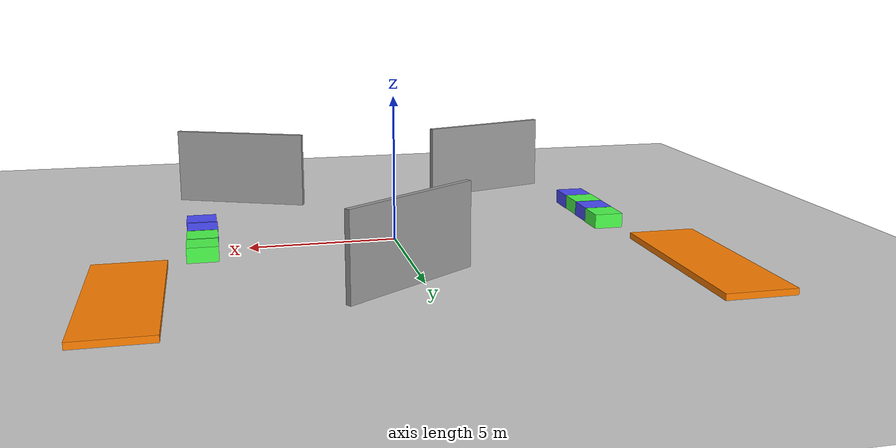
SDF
<sdf version="1.6">
 <world name="default">
  <light name="sun" type="directional">
   <pose>0 0 10 0 -0 0</pose>
   <diffuse>0.8 0.8 0.8 1</diffuse>
   <specular>0.2 0.2 0.2 1</specular>
   <attenuation>
    <range>1000</range>
    <constant>0.9</constant>
    <linear>0.01</linear>
    <quadratic>0.001</quadratic>
   </attenuation>
   <direction>-0.5 0.1 -0.9</direction>
  </light>
  <model name="ground_plane">
   <static>1</static>
   <link name="link">
    <collision name="collision">
     <geometry><plane><normal>0 0 1</normal><size>100 100</size></plane></geometry>
     <surface>
      <contact><collide_bitmask>65535</collide_bitmask></contact>
      <friction><ode><mu>100</mu><mu2>50</mu2></ode></friction>
     </surface>
    </collision>
    <visual name="visual">
     <cast_shadows>0</cast_shadows>
     <geometry><plane><normal>0 0 1</normal><size>100 100</size></plane></geometry>
     <material>
      <script><uri>file://media/materials/scripts/gazebo.material</uri><name>Gazebo/Grey</name></script>
     </material>
    </visual>
   </link>
  </model>
  <gravity>0 0 -9.8</gravity>
  <magnetic_field>6e-06 2.3e-05 -4.2e-05</magnetic_field>
  <atmosphere type="adiabatic"/>
  <physics name="default_physics" default="0" type="ode">
   <max_step_size>0.001</max_step_size>
   <real_time_factor>1</real_time_factor>
   <real_time_update_rate>1000</real_time_update_rate>
  </physics>
  <scene><ambient>0.4 0.4 0.4 1</ambient><background>0.7 0.7 0.7 1</background><shadows>1</shadows></scene>
  <audio><device>default</device></audio>
  <spherical_coordinates>
   <surface_model>EARTH_WGS84</surface_model>
   <latitude_deg>0</latitude_deg>
   <longitude_deg>0</longitude_deg>
   <elevation>0</elevation>
   <heading_deg>0</heading_deg>
  </spherical_coordinates>
  <model name="grey_wall">
   <link name="link">
    <pose>0 0 1.4 0 -0 0</pose>
    <inertial>
     <mass>1</mass>
     <inertia><ixx>1</ixx><ixy>0</ixy><ixz>0</ixz><iyy>1</iyy><iyz>0</iyz><izz>1</izz></inertia>
    </inertial>
    <visual name="visual">
     <cast_shadows>0</cast_shadows>
     <geometry><box><size>5.13 0.2 2.8</size></box></geometry>
     <material>
      <script>
       <uri>model://grey_wall/materials/scripts</uri>
       <uri>model://grey_wall/materials/textures</uri>
       <name>vrc/grey_wall</name>
      </script>
      <shader type="vertex"><normal_map>__default__</normal_map></shader>
      <ambient>1 1 1 1</ambient>
      <diffuse>1 1 1 1</diffuse>
      <specular>0 0 0 1</specular>
      <emissive>0 0 0 1</emissive>
     </material>
    </visual>
    <collision name="collision">
     <geometry><box><size>7.5 0.2 2.8</size></box></geometry>
     <surface>
      <friction>
       <ode><mu>1</mu><mu2>1</mu2><fdir1>0 0 0</fdir1><slip1>0</slip1><slip2>0</slip2></ode>
       <torsional>
        <coefficient>1</coefficient>
        <patch_radius>0</patch_radius>
        <surface_radius>0</surface_radius>
        <use_patch_radius>1</use_patch_radius>
        <ode><slip>0</slip></ode>
       </torsional>
      </friction>
      <bounce><restitution_coefficient>0</restitution_coefficient><threshold>1e+06</threshold></bounce>
      <contact>
       <collide_without_contact>0</collide_without_contact>
       <collide_without_contact_bitmask>1</collide_without_contact_bitmask>
       <collide_bitmask>1</collide_bitmask>
       <ode>
        <soft_cfm>0</soft_cfm>
        <soft_erp>0.2</soft_erp>
        <kp>1e+13</kp>
        <kd>1</kd>
        <max_vel>0.01</max_vel>
        <min_depth>0</min_depth>
       </ode>
       <bullet>
        <split_impulse>1</split_impulse>
        <split_impulse_penetration_threshold>-0.01</split_impulse_penetration_threshold>
        <soft_cfm>0</soft_cfm>
        <soft_erp>0.2</soft_erp>
        <kp>1e+13</kp>
        <kd>1</kd>
       </bullet>
      </contact>
     </surface>
    </collision>
   </link>
   <static>1</static>
   <pose>4.96137 -6.80537 0 0 0 -0.4</pose>
  </model>
  <model name="grey_wall_0">
   <link name="link">
    <pose>0 0 1.4 0 -0 0</pose>
    <inertial>
     <mass>1</mass>
     <inertia><ixx>1</ixx><ixy>0</ixy><ixz>0</ixz><iyy>1</iyy><iyz>0</iyz><izz>1</izz></inertia>
    </inertial>
    <visual name="visual">
     <cast_shadows>0</cast_shadows>
     <geometry><box><size>5.13 0.2 2.8</size></box></geometry>
     <material>
      <script>
       <uri>model://grey_wall/materials/scripts</uri>
       <uri>model://grey_wall/materials/textures</uri>
       <name>vrc/grey_wall</name>
      </script>
      <shader type="vertex"><normal_map>__default__</normal_map></shader>
      <ambient>1 1 1 1</ambient>
      <diffuse>1 1 1 1</diffuse>
      <specular>0 0 0 1</specular>
      <emissive>0 0 0 1</emissive>
     </material>
    </visual>
    <collision name="collision">
     <geometry><box><size>7.5 0.2 2.8</size></box></geometry>
     <surface>
      <friction>
       <ode><mu>1</mu><mu2>1</mu2><fdir1>0 0 0</fdir1><slip1>0</slip1><slip2>0</slip2></ode>
       <torsional>
        <coefficient>1</coefficient>
        <patch_radius>0</patch_radius>
        <surface_radius>0</surface_radius>
        <use_patch_radius>1</use_patch_radius>
        <ode><slip>0</slip></ode>
       </torsional>
      </friction>
      <bounce><restitution_coefficient>0</restitution_coefficient><threshold>1e+06</threshold></bounce>
      <contact>
       <collide_without_contact>0</collide_without_contact>
       <collide_without_contact_bitmask>1</collide_without_contact_bitmask>
       <collide_bitmask>1</collide_bitmask>
       <ode>
        <soft_cfm>0</soft_cfm>
        <soft_erp>0.2</soft_erp>
        <kp>1e+13</kp>
        <kd>1</kd>
        <max_vel>0.01</max_vel>
        <min_depth>0</min_depth>
       </ode>
       <bullet>
        <split_impulse>1</split_impulse>
        <split_impulse_penetration_threshold>-0.01</split_impulse_penetration_threshold>
        <soft_cfm>0</soft_cfm>
        <soft_erp>0.2</soft_erp>
        <kp>1e+13</kp>
        <kd>1</kd>
       </bullet>
      </contact>
     </surface>
    </collision>
   </link>
   <static>1</static>
   <pose>-5.11161 -6.82805 0 0 -0 0.3</pose>
  </model>
  <model name="grey_wall_1">
   <link name="link">
    <pose>0 0 1.4 0 -0 0</pose>
    <inertial>
     <mass>1</mass>
     <inertia><ixx>1</ixx><ixy>0</ixy><ixz>0</ixz><iyy>1</iyy><iyz>0</iyz><izz>1</izz></inertia>
    </inertial>
    <visual name="visual">
     <cast_shadows>0</cast_shadows>
     <geometry><box><size>5.13 0.2 2.8</size></box></geometry>
     <material>
      <script>
       <uri>model://grey_wall/materials/scripts</uri>
       <uri>model://grey_wall/materials/textures</uri>
       <name>vrc/grey_wall</name>
      </script>
      <shader type="vertex"><normal_map>__default__</normal_map></shader>
      <ambient>1 1 1 1</ambient>
      <diffuse>1 1 1 1</diffuse>
      <specular>0 0 0 1</specular>
      <emissive>0 0 0 1</emissive>
     </material>
    </visual>
    <collision name="collision">
     <geometry><box><size>7.5 0.2 2.8</size></box></geometry>
     <surface>
      <friction>
       <ode><mu>1</mu><mu2>1</mu2><fdir1>0 0 0</fdir1><slip1>0</slip1><slip2>0</slip2></ode>
       <torsional>
        <coefficient>1</coefficient>
        <patch_radius>0</patch_radius>
        <surface_radius>0</surface_radius>
        <use_patch_radius>1</use_patch_radius>
        <ode><slip>0</slip></ode>
       </torsional>
      </friction>
      <bounce><restitution_coefficient>0</restitution_coefficient><threshold>1e+06</threshold></bounce>
      <contact>
       <collide_without_contact>0</collide_without_contact>
       <collide_without_contact_bitmask>1</collide_without_contact_bitmask>
       <collide_bitmask>1</collide_bitmask>
       <ode>
        <soft_cfm>0</soft_cfm>
        <soft_erp>0.2</soft_erp>
        <kp>1e+13</kp>
        <kd>1</kd>
        <max_vel>0.01</max_vel>
        <min_depth>0</min_depth>
       </ode>
       <bullet>
        <split_impulse>1</split_impulse>
        <split_impulse_penetration_threshold>-0.01</split_impulse_penetration_threshold>
        <soft_cfm>0</soft_cfm>
        <soft_erp>0.2</soft_erp>
        <kp>1e+13</kp>
        <kd>1</kd>
       </bullet>
      </contact>
     </surface>
    </collision>
   </link>
   <static>1</static>
   <pose>0.416073 5.01429 0 0 -0 0.6</pose>
  </model>
  <model name="visit_clone_1">
   <link name="link">
    <inertial>
     <mass>1</mass>
     <inertia>
      <ixx>0.166667</ixx>
      <ixy>0</ixy>
      <ixz>0</ixz>
      <iyy>0.166667</iyy>
      <iyz>0</iyz>
      <izz>0.166667</izz>
     </inertia>
    </inertial>
    <visual name="visual">
     <geometry><box><size>1 1 0.5</size></box></geometry>
     <material>
      <script><name>Gazebo/Grey</name><uri>file://media/materials/scripts/gazebo.material</uri></script>
      <shader type="vertex"><normal_map>__default__</normal_map></shader>
      <ambient>0.3 0.3 1 1</ambient>
      <diffuse>0.7 0.7 0.7 1</diffuse>
      <specular>0.01 0.01 0.01 1</specular>
      <emissive>0 0 0 1</emissive>
     </material>
    </visual>
    <collision name="collision">
     <geometry><box><size>1 1 1</size></box></geometry>
     <surface>
      <friction>
       <ode><mu>1</mu><mu2>1</mu2><fdir1>0 0 0</fdir1><slip1>0</slip1><slip2>0</slip2></ode>
       <torsional>
        <coefficient>1</coefficient>
        <patch_radius>0</patch_radius>
        <surface_radius>0</surface_radius>
        <use_patch_radius>1</use_patch_radius>
        <ode><slip>0</slip></ode>
       </torsional>
      </friction>
      <bounce><restitution_coefficient>0</restitution_coefficient><threshold>1e+06</threshold></bounce>
      <contact>
       <collide_without_contact>0</collide_without_contact>
       <collide_without_contact_bitmask>1</collide_without_contact_bitmask>
       <collide_bitmask>1</collide_bitmask>
       <ode>
        <soft_cfm>0</soft_cfm>
        <soft_erp>0.2</soft_erp>
        <kp>1e+13</kp>
        <kd>1</kd>
        <max_vel>0.01</max_vel>
        <min_depth>0</min_depth>
       </ode>
       <bullet>
        <split_impulse>1</split_impulse>
        <split_impulse_penetration_threshold>-0.01</split_impulse_penetration_threshold>
        <soft_cfm>0</soft_cfm>
        <soft_erp>0.2</soft_erp>
        <kp>1e+13</kp>
        <kd>1</kd>
       </bullet>
      </contact>
     </surface>
    </collision>
   </link>
   <static>0</static>
   <pose>6.52637 -1.47087 0.5 0 -0 0</pose>
  </model>
  <model name="visit_clone_1_0">
   <link name="link">
    <inertial>
     <mass>1</mass>
     <inertia>
      <ixx>0.166667</ixx>
      <ixy>0</ixy>
      <ixz>0</ixz>
      <iyy>0.166667</iyy>
      <iyz>0</iyz>
      <izz>0.166667</izz>
     </inertia>
    </inertial>
    <visual name="visual">
     <geometry><box><size>1 1 0.5</size></box></geometry>
     <material>
      <script><name>Gazebo/Grey</name><uri>file://media/materials/scripts/gazebo.material</uri></script>
      <shader type="vertex"><normal_map>__default__</normal_map></shader>
      <ambient>0.3 0.3 1 1</ambient>
      <diffuse>0.7 0.7 0.7 1</diffuse>
      <specular>0.01 0.01 0.01 1</specular>
      <emissive>0 0 0 1</emissive>
     </material>
    </visual>
    <collision name="collision">
     <geometry><box><size>1 1 1</size></box></geometry>
     <surface>
      <friction>
       <ode><mu>1</mu><mu2>1</mu2><fdir1>0 0 0</fdir1><slip1>0</slip1><slip2>0</slip2></ode>
       <torsional>
        <coefficient>1</coefficient>
        <patch_radius>0</patch_radius>
        <surface_radius>0</surface_radius>
        <use_patch_radius>1</use_patch_radius>
        <ode><slip>0</slip></ode>
       </torsional>
      </friction>
      <bounce><restitution_coefficient>0</restitution_coefficient><threshold>1e+06</threshold></bounce>
      <contact>
       <collide_without_contact>0</collide_without_contact>
       <collide_without_contact_bitmask>1</collide_without_contact_bitmask>
       <collide_bitmask>1</collide_bitmask>
       <ode>
        <soft_cfm>0</soft_cfm>
        <soft_erp>0.2</soft_erp>
        <kp>1e+13</kp>
        <kd>1</kd>
        <max_vel>0.01</max_vel>
        <min_depth>0</min_depth>
       </ode>
       <bullet>
        <split_impulse>1</split_impulse>
        <split_impulse_penetration_threshold>-0.01</split_impulse_penetration_threshold>
        <soft_cfm>0</soft_cfm>
        <soft_erp>0.2</soft_erp>
        <kp>1e+13</kp>
        <kd>1</kd>
       </bullet>
      </contact>
     </surface>
    </collision>
   </link>
   <static>0</static>
   <pose>6.49069 -0.393406 0.5 0 -0 0</pose>
  </model>
  <model name="visit_clone_1_1">
   <link name="link">
    <inertial>
     <mass>1</mass>
     <inertia>
      <ixx>0.166667</ixx>
      <ixy>0</ixy>
      <ixz>0</ixz>
      <iyy>0.166667</iyy>
      <iyz>0</iyz>
      <izz>0.166667</izz>
     </inertia>
    </inertial>
    <visual name="visual">
     <geometry><box><size>1 1 0.5</size></box></geometry>
     <material>
      <script><name>Gazebo/Grey</name><uri>file://media/materials/scripts/gazebo.material</uri></script>
      <shader type="vertex"><normal_map>__default__</normal_map></shader>
      <ambient>0.3 0.3 1 1</ambient>
      <diffuse>0.7 0.7 0.7 1</diffuse>
      <specular>0.01 0.01 0.01 1</specular>
      <emissive>0 0 0 1</emissive>
     </material>
    </visual>
    <collision name="collision">
     <geometry><box><size>1 1 1</size></box></geometry>
     <surface>
      <friction>
       <ode><mu>1</mu><mu2>1</mu2><fdir1>0 0 0</fdir1><slip1>0</slip1><slip2>0</slip2></ode>
       <torsional>
        <coefficient>1</coefficient>
        <patch_radius>0</patch_radius>
        <surface_radius>0</surface_radius>
        <use_patch_radius>1</use_patch_radius>
        <ode><slip>0</slip></ode>
       </torsional>
      </friction>
      <bounce><restitution_coefficient>0</restitution_coefficient><threshold>1e+06</threshold></bounce>
      <contact>
       <collide_without_contact>0</collide_without_contact>
       <collide_without_contact_bitmask>1</collide_without_contact_bitmask>
       <collide_bitmask>1</collide_bitmask>
       <ode>
        <soft_cfm>0</soft_cfm>
        <soft_erp>0.2</soft_erp>
        <kp>1e+13</kp>
        <kd>1</kd>
        <max_vel>0.01</max_vel>
        <min_depth>0</min_depth>
       </ode>
       <bullet>
        <split_impulse>1</split_impulse>
        <split_impulse_penetration_threshold>-0.01</split_impulse_penetration_threshold>
        <soft_cfm>0</soft_cfm>
        <soft_erp>0.2</soft_erp>
        <kp>1e+13</kp>
        <kd>1</kd>
       </bullet>
      </contact>
     </surface>
    </collision>
   </link>
   <static>0</static>
   <pose>-7.50785 -2.50609 0.5 0 -0 0</pose>
  </model>
  <model name="visit_clone_1_2">
   <link name="link">
    <inertial>
     <mass>1</mass>
     <inertia>
      <ixx>0.166667</ixx>
      <ixy>0</ixy>
      <ixz>0</ixz>
      <iyy>0.166667</iyy>
      <iyz>0</iyz>
      <izz>0.166667</izz>
     </inertia>
    </inertial>
    <visual name="visual">
     <geometry><box><size>1 1 0.5</size></box></geometry>
     <material>
      <script><name>Gazebo/Grey</name><uri>file://media/materials/scripts/gazebo.material</uri></script>
      <shader type="vertex"><normal_map>__default__</normal_map></shader>
      <ambient>0.3 0.3 1 1</ambient>
      <diffuse>0.7 0.7 0.7 1</diffuse>
      <specular>0.01 0.01 0.01 1</specular>
      <emissive>0 0 0 1</emissive>
     </material>
    </visual>
    <collision name="collision">
     <geometry><box><size>1 1 1</size></box></geometry>
     <surface>
      <friction>
       <ode><mu>1</mu><mu2>1</mu2><fdir1>0 0 0</fdir1><slip1>0</slip1><slip2>0</slip2></ode>
       <torsional>
        <coefficient>1</coefficient>
        <patch_radius>0</patch_radius>
        <surface_radius>0</surface_radius>
        <use_patch_radius>1</use_patch_radius>
        <ode><slip>0</slip></ode>
       </torsional>
      </friction>
      <bounce><restitution_coefficient>0</restitution_coefficient><threshold>1e+06</threshold></bounce>
      <contact>
       <collide_without_contact>0</collide_without_contact>
       <collide_without_contact_bitmask>1</collide_without_contact_bitmask>
       <collide_bitmask>1</collide_bitmask>
       <ode>
        <soft_cfm>0</soft_cfm>
        <soft_erp>0.2</soft_erp>
        <kp>1e+13</kp>
        <kd>1</kd>
        <max_vel>0.01</max_vel>
        <min_depth>0</min_depth>
       </ode>
       <bullet>
        <split_impulse>1</split_impulse>
        <split_impulse_penetration_threshold>-0.01</split_impulse_penetration_threshold>
        <soft_cfm>0</soft_cfm>
        <soft_erp>0.2</soft_erp>
        <kp>1e+13</kp>
        <kd>1</kd>
       </bullet>
      </contact>
     </surface>
    </collision>
   </link>
   <static>0</static>
   <pose>-7.50768 -0.452671 0.499995 -1e-05 0 0</pose>
  </model>
  <model name="visit_clone_1_2_clone">
   <link name="link">
    <inertial>
     <mass>1</mass>
     <inertia>
      <ixx>0.166667</ixx>
      <ixy>0</ixy>
      <ixz>0</ixz>
      <iyy>0.166667</iyy>
      <iyz>0</iyz>
      <izz>0.166667</izz>
     </inertia>
    </inertial>
    <visual name="visual">
     <geometry><box><size>1 1 0.5</size></box></geometry>
     <material>
      <script><name>Gazebo/Grey</name><uri>file://media/materials/scripts/gazebo.material</uri></script>
      <shader type="vertex"><normal_map>__default__</normal_map></shader>
      <ambient>0.3 1 0.3 1</ambient>
      <diffuse>0.7 0.7 0.7 1</diffuse>
      <specular>0.01 0.01 0.01 1</specular>
      <emissive>0 0 0 1</emissive>
     </material>
    </visual>
    <collision name="collision">
     <geometry><box><size>1 1 1</size></box></geometry>
     <surface>
      <friction>
       <ode><mu>1</mu><mu2>1</mu2><fdir1>0 0 0</fdir1><slip1>0</slip1><slip2>0</slip2></ode>
       <torsional>
        <coefficient>1</coefficient>
        <patch_radius>0</patch_radius>
        <surface_radius>0</surface_radius>
        <use_patch_radius>1</use_patch_radius>
        <ode><slip>0</slip></ode>
       </torsional>
      </friction>
      <bounce><restitution_coefficient>0</restitution_coefficient><threshold>1e+06</threshold></bounce>
      <contact>
       <collide_without_contact>0</collide_without_contact>
       <collide_without_contact_bitmask>1</collide_without_contact_bitmask>
       <collide_bitmask>1</collide_bitmask>
       <ode>
        <soft_cfm>0</soft_cfm>
        <soft_erp>0.2</soft_erp>
        <kp>1e+13</kp>
        <kd>1</kd>
        <max_vel>0.01</max_vel>
        <min_depth>0</min_depth>
       </ode>
       <bullet>
        <split_impulse>1</split_impulse>
        <split_impulse_penetration_threshold>-0.01</split_impulse_penetration_threshold>
        <soft_cfm>0</soft_cfm>
        <soft_erp>0.2</soft_erp>
        <kp>1e+13</kp>
        <kd>1</kd>
       </bullet>
      </contact>
     </surface>
    </collision>
   </link>
   <static>0</static>
   <pose>-7.52591 -1.49973 0.499995 0 1e-05 0</pose>
  </model>
  <model name="visit_clone_1_2_clone_clone">
   <link name="link">
    <inertial>
     <mass>1</mass>
     <inertia>
      <ixx>0.166667</ixx>
      <ixy>0</ixy>
      <ixz>0</ixz>
      <iyy>0.166667</iyy>
      <iyz>0</iyz>
      <izz>0.166667</izz>
     </inertia>
    </inertial>
    <visual name="visual">
     <geometry><box><size>1 1 0.5</size></box></geometry>
     <material>
      <script><name>Gazebo/Grey</name><uri>file://media/materials/scripts/gazebo.material</uri></script>
      <shader type="vertex"><normal_map>__default__</normal_map></shader>
      <ambient>0.3 1 0.3 1</ambient>
      <diffuse>0.7 0.7 0.7 1</diffuse>
      <specular>0.01 0.01 0.01 1</specular>
      <emissive>0 0 0 1</emissive>
     </material>
    </visual>
    <collision name="collision">
     <geometry><box><size>1 1 1</size></box></geometry>
     <surface>
      <friction>
       <ode><mu>1</mu><mu2>1</mu2><fdir1>0 0 0</fdir1><slip1>0</slip1><slip2>0</slip2></ode>
       <torsional>
        <coefficient>1</coefficient>
        <patch_radius>0</patch_radius>
        <surface_radius>0</surface_radius>
        <use_patch_radius>1</use_patch_radius>
        <ode><slip>0</slip></ode>
       </torsional>
      </friction>
      <bounce><restitution_coefficient>0</restitution_coefficient><threshold>1e+06</threshold></bounce>
      <contact>
       <collide_without_contact>0</collide_without_contact>
       <collide_without_contact_bitmask>1</collide_without_contact_bitmask>
       <collide_bitmask>1</collide_bitmask>
       <ode>
        <soft_cfm>0</soft_cfm>
        <soft_erp>0.2</soft_erp>
        <kp>1e+13</kp>
        <kd>1</kd>
        <max_vel>0.01</max_vel>
        <min_depth>0</min_depth>
       </ode>
       <bullet>
        <split_impulse>1</split_impulse>
        <split_impulse_penetration_threshold>-0.01</split_impulse_penetration_threshold>
        <soft_cfm>0</soft_cfm>
        <soft_erp>0.2</soft_erp>
        <kp>1e+13</kp>
        <kd>1</kd>
       </bullet>
      </contact>
     </surface>
    </collision>
   </link>
   <static>0</static>
   <pose>-7.49406 0.563616 0.499995 0 -1e-05 0</pose>
  </model>
  <model name="visit_clone_1_2_clone_clone_0">
   <link name="link">
    <inertial>
     <mass>1</mass>
     <inertia>
      <ixx>0.166667</ixx>
      <ixy>0</ixy>
      <ixz>0</ixz>
      <iyy>0.166667</iyy>
      <iyz>0</iyz>
      <izz>0.166667</izz>
     </inertia>
    </inertial>
    <visual name="visual">
     <geometry><box><size>1 1 0.5</size></box></geometry>
     <material>
      <script><name>Gazebo/Grey</name><uri>file://media/materials/scripts/gazebo.material</uri></script>
      <shader type="vertex"><normal_map>__default__</normal_map></shader>
      <ambient>0.3 1 0.3 1</ambient>
      <diffuse>0.7 0.7 0.7 1</diffuse>
      <specular>0.01 0.01 0.01 1</specular>
      <emissive>0 0 0 1</emissive>
     </material>
    </visual>
    <collision name="collision">
     <geometry><box><size>1 1 1</size></box></geometry>
     <surface>
      <friction>
       <ode><mu>1</mu><mu2>1</mu2><fdir1>0 0 0</fdir1><slip1>0</slip1><slip2>0</slip2></ode>
       <torsional>
        <coefficient>1</coefficient>
        <patch_radius>0</patch_radius>
        <surface_radius>0</surface_radius>
        <use_patch_radius>1</use_patch_radius>
        <ode><slip>0</slip></ode>
       </torsional>
      </friction>
      <bounce><restitution_coefficient>0</restitution_coefficient><threshold>1e+06</threshold></bounce>
      <contact>
       <collide_without_contact>0</collide_without_contact>
       <collide_without_contact_bitmask>1</collide_without_contact_bitmask>
       <collide_bitmask>1</collide_bitmask>
       <ode>
        <soft_cfm>0</soft_cfm>
        <soft_erp>0.2</soft_erp>
        <kp>1e+13</kp>
        <kd>1</kd>
        <max_vel>0.01</max_vel>
        <min_depth>0</min_depth>
       </ode>
       <bullet>
        <split_impulse>1</split_impulse>
        <split_impulse_penetration_threshold>-0.01</split_impulse_penetration_threshold>
        <soft_cfm>0</soft_cfm>
        <soft_erp>0.2</soft_erp>
        <kp>1e+13</kp>
        <kd>1</kd>
       </bullet>
      </contact>
     </surface>
    </collision>
   </link>
   <static>0</static>
   <pose>6.50132 0.63881 0.499995 0 -1e-05 0</pose>
  </model>
  <model name="visit_clone_1_2_clone_clone_1">
   <link name="link">
    <inertial>
     <mass>1</mass>
     <inertia>
      <ixx>0.166667</ixx>
      <ixy>0</ixy>
      <ixz>0</ixz>
      <iyy>0.166667</iyy>
      <iyz>0</iyz>
      <izz>0.166667</izz>
     </inertia>
    </inertial>
    <visual name="visual">
     <geometry><box><size>1 1 0.5</size></box></geometry>
     <material>
      <script><name>Gazebo/Grey</name><uri>file://media/materials/scripts/gazebo.material</uri></script>
      <shader type="vertex"><normal_map>__default__</normal_map></shader>
      <ambient>0.3 1 0.3 1</ambient>
      <diffuse>0.7 0.7 0.7 1</diffuse>
      <specular>0.01 0.01 0.01 1</specular>
      <emissive>0 0 0 1</emissive>
     </material>
    </visual>
    <collision name="collision">
     <geometry><box><size>1 1 1</size></box></geometry>
     <surface>
      <friction>
       <ode><mu>1</mu><mu2>1</mu2><fdir1>0 0 0</fdir1><slip1>0</slip1><slip2>0</slip2></ode>
       <torsional>
        <coefficient>1</coefficient>
        <patch_radius>0</patch_radius>
        <surface_radius>0</surface_radius>
        <use_patch_radius>1</use_patch_radius>
        <ode><slip>0</slip></ode>
       </torsional>
      </friction>
      <bounce><restitution_coefficient>0</restitution_coefficient><threshold>1e+06</threshold></bounce>
      <contact>
       <collide_without_contact>0</collide_without_contact>
       <collide_without_contact_bitmask>1</collide_without_contact_bitmask>
       <collide_bitmask>1</collide_bitmask>
       <ode>
        <soft_cfm>0</soft_cfm>
        <soft_erp>0.2</soft_erp>
        <kp>1e+13</kp>
        <kd>1</kd>
        <max_vel>0.01</max_vel>
        <min_depth>0</min_depth>
       </ode>
       <bullet>
        <split_impulse>1</split_impulse>
        <split_impulse_penetration_threshold>-0.01</split_impulse_penetration_threshold>
        <soft_cfm>0</soft_cfm>
        <soft_erp>0.2</soft_erp>
        <kp>1e+13</kp>
        <kd>1</kd>
       </bullet>
      </contact>
     </surface>
    </collision>
   </link>
   <static>0</static>
   <pose>6.50476 1.70295 0.499995 0 -1e-05 0</pose>
  </model>
  <model name="visit_clone_1_2_clone_clone_2">
   <link name="link">
    <inertial>
     <mass>1</mass>
     <inertia>
      <ixx>0.166667</ixx>
      <ixy>0</ixy>
      <ixz>0</ixz>
      <iyy>0.166667</iyy>
      <iyz>0</iyz>
      <izz>0.166667</izz>
     </inertia>
    </inertial>
    <visual name="visual">
     <geometry><box><size>2.23821 6.42903 0.2</size></box></geometry>
     <material>
      <script><name>Gazebo/Grey</name><uri>file://media/materials/scripts/gazebo.material</uri></script>
      <shader type="vertex"><normal_map>__default__</normal_map></shader>
      <ambient>1 0.5 0 1</ambient>
      <diffuse>0.7 0.7 0.7 1</diffuse>
      <specular>0.01 0.01 0.01 1</specular>
      <emissive>0 0 0 1</emissive>
     </material>
    </visual>
    <collision name="collision">
     <geometry><box><size>2.23821 6.42903 1</size></box></geometry>
     <surface>
      <friction>
       <ode><mu>1</mu><mu2>1</mu2><fdir1>0 0 0</fdir1><slip1>0</slip1><slip2>0</slip2></ode>
       <torsional>
        <coefficient>1</coefficient>
        <patch_radius>0</patch_radius>
        <surface_radius>0</surface_radius>
        <use_patch_radius>1</use_patch_radius>
        <ode><slip>0</slip></ode>
       </torsional>
      </friction>
      <bounce><restitution_coefficient>0</restitution_coefficient><threshold>1e+06</threshold></bounce>
      <contact>
       <collide_without_contact>0</collide_without_contact>
       <collide_without_contact_bitmask>1</collide_without_contact_bitmask>
       <collide_bitmask>1</collide_bitmask>
       <ode>
        <soft_cfm>0</soft_cfm>
        <soft_erp>0.2</soft_erp>
        <kp>1e+13</kp>
        <kd>1</kd>
        <max_vel>0.01</max_vel>
        <min_depth>0</min_depth>
       </ode>
       <bullet>
        <split_impulse>1</split_impulse>
        <split_impulse_penetration_threshold>-0.01</split_impulse_penetration_threshold>
        <soft_cfm>0</soft_cfm>
        <soft_erp>0.2</soft_erp>
        <kp>1e+13</kp>
        <kd>1</kd>
       </bullet>
      </contact>
     </surface>
    </collision>
   </link>
   <static>0</static>
   <pose>8.65781 6.01549 0.49346 0.002035 -0 0</pose>
  </model>
  <model name="visit_clone_1_2_clone_clone_2_clone">
   <link name="link">
    <inertial>
     <mass>1</mass>
     <inertia>
      <ixx>0.166667</ixx>
      <ixy>0</ixy>
      <ixz>0</ixz>
      <iyy>0.166667</iyy>
      <iyz>0</iyz>
      <izz>0.166667</izz>
     </inertia>
    </inertial>
    <visual name="visual">
     <geometry><box><size>2.23821 6.42903 0.2</size></box></geometry>
     <material>
      <script><name>Gazebo/Grey</name><uri>file://media/materials/scripts/gazebo.material</uri></script>
      <shader type="vertex"><normal_map>__default__</normal_map></shader>
      <ambient>1 0.5 0 1</ambient>
      <diffuse>0.7 0.7 0.7 1</diffuse>
      <specular>0.01 0.01 0.01 1</specular>
      <emissive>0 0 0 1</emissive>
     </material>
    </visual>
    <collision name="collision">
     <geometry><box><size>2.23821 6.42903 1</size></box></geometry>
     <surface>
      <friction>
       <ode><mu>1</mu><mu2>1</mu2><fdir1>0 0 0</fdir1><slip1>0</slip1><slip2>0</slip2></ode>
       <torsional>
        <coefficient>1</coefficient>
        <patch_radius>0</patch_radius>
        <surface_radius>0</surface_radius>
        <use_patch_radius>1</use_patch_radius>
        <ode><slip>0</slip></ode>
       </torsional>
      </friction>
      <bounce><restitution_coefficient>0</restitution_coefficient><threshold>1e+06</threshold></bounce>
      <contact>
       <collide_without_contact>0</collide_without_contact>
       <collide_without_contact_bitmask>1</collide_without_contact_bitmask>
       <collide_bitmask>1</collide_bitmask>
       <ode>
        <soft_cfm>0</soft_cfm>
        <soft_erp>0.2</soft_erp>
        <kp>1e+13</kp>
        <kd>1</kd>
        <max_vel>0.01</max_vel>
        <min_depth>0</min_depth>
       </ode>
       <bullet>
        <split_impulse>1</split_impulse>
        <split_impulse_penetration_threshold>-0.01</split_impulse_penetration_threshold>
        <soft_cfm>0</soft_cfm>
        <soft_erp>0.2</soft_erp>
        <kp>1e+13</kp>
        <kd>1</kd>
       </bullet>
      </contact>
     </surface>
    </collision>
   </link>
   <static>0</static>
   <pose>-8.57363 6.21105 0.49346 -0.002035 0 0</pose>
  </model>
 </world>
</sdf>
